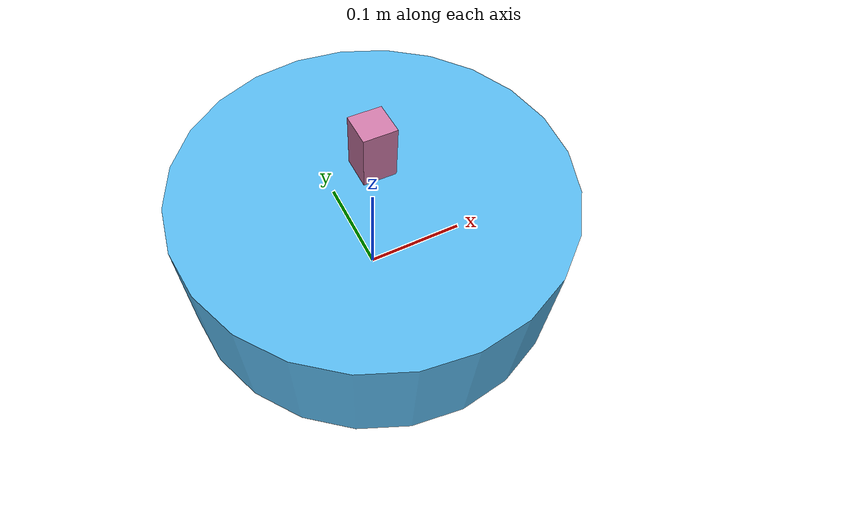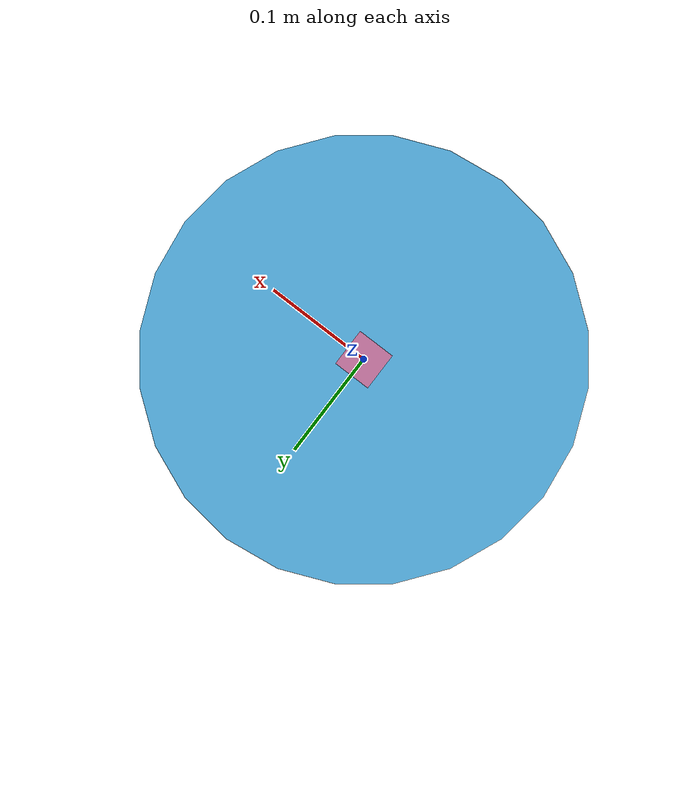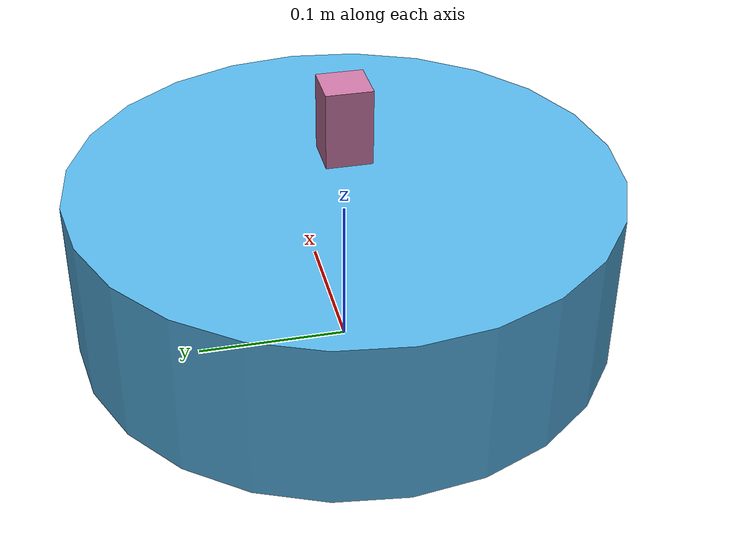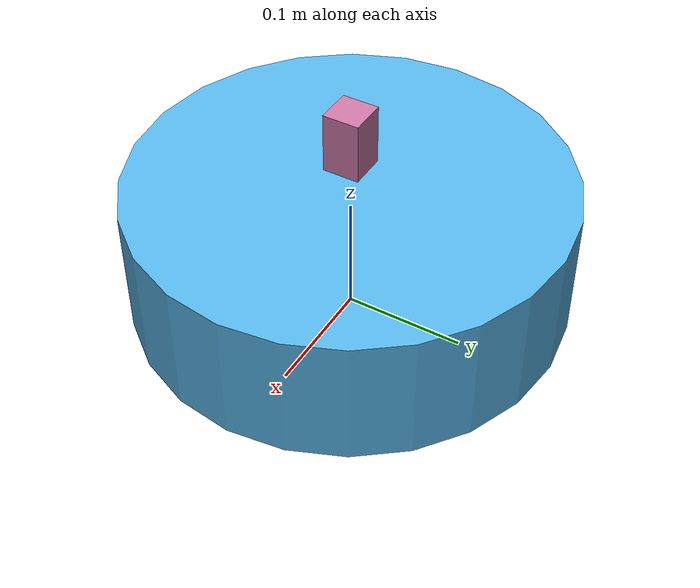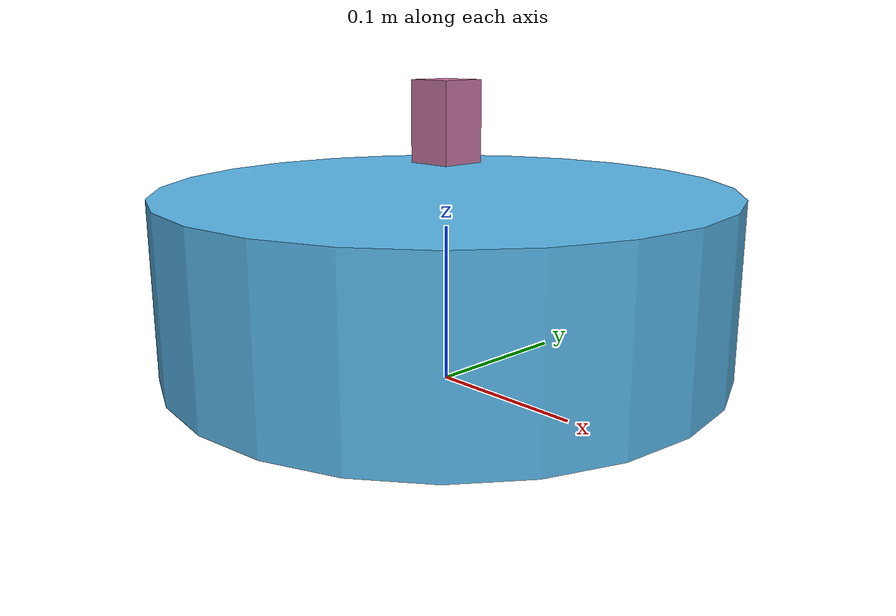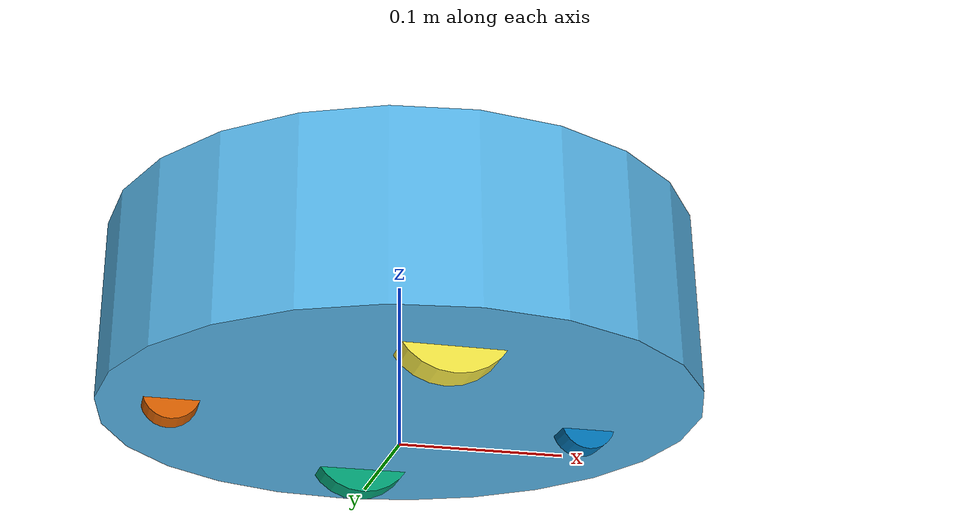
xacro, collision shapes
<?xml version="1.0"?>
<robot name="wangbx_robot_standalone"
       xmlns:sensor="http://playerstage.sourceforge.net/gazebo/xmlschema/#sensor"
       xmlns:controller="http://playerstage.sourceforge.net/gazebo/xmlschema/#controller"
       xmlns:interface="http://playerstage.sourceforge.net/gazebo/xmlschema/#interface"
       xmlns:xacro="http://ros.org/wiki/xacro">

  <xacro:include filename="$(find wangbx_robot_description)/urdf/wangbx_robot.urdf.xacro" />

  <wangbx_robot/>

</robot>

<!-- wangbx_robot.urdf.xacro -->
<robot name="wangbx_robot" xmlns:xacro="http://ros.org/wiki/xacro">
  <xacro:include filename="$(find wangbx_robot_description)/urdf/common_properties.urdf.xacro"/>
  <xacro:include filename="$(find wangbx_robot_description)/urdf/wangbx_robot_gazebo.urdf.xacro"/>

  <xacro:macro name="wangbx_robot">
    <link name="base_footprint"/>

    <joint name="base_joint" type="fixed">
      <origin xyz="0 0 0.0102" rpy="0 0 0" />
      <parent link="base_footprint"/>
      <child link="base_link" />
    </joint>
    <link name="base_link">
      <visual>
        <geometry>
        <cylinder length="0.10" radius="0.1"/>
          <!--mesh filename="package://wangbx_robot_description/meshes/main_body.dae" /-->
        </geometry>
        <origin xyz="0.001 0 0.05199" rpy="0 0 0"/>
      </visual>
      <collision name="base">
        <geometry>
          <cylinder length="0.10938" radius="0.178"/>
        </geometry>
        <origin xyz="0.0 0 0.05949" rpy="0 0 0"/>
      </collision>
      <inertial>
        <origin xyz="0.01 0 0"/>
        <mass value="0.4"/>
        <inertia ixx="0.019995" ixy="0.0" ixz="0.0"
                 iyy="0.019995" iyz="0.0"
                 izz="0.03675" />
      </inertial>
    </link>

    <joint name="wheel_left_joint" type="continuous">
      <parent link="base_link"/>
      <child link="wheel_left_link"/>
      <origin xyz="0.00 ${0.23/2} 0.0250" rpy="${-M_PI/2} 0 0"/>
      <axis xyz="0 0 1"/>
    </joint>

    <link name="wheel_left_link">
      <visual>
        <geometry>
          <mesh filename="package://wangbx_robot_description/meshes/wheel.dae"/>
        </geometry>
        <origin xyz="0 0 0" rpy="0 0 0"/>
      </visual>
      <collision>
        <geometry>
          <cylinder length="0.0206" radius="0.0352"/>
        </geometry>
        <origin rpy="0 0 0" xyz="0 0 0"/>
      </collision>
      <inertial>
        <mass value="0.01" />
        <origin xyz="0 0 0" />
        <inertia ixx="0.001" ixy="0.0" ixz="0.0"
                 iyy="0.001" iyz="0.0"
                 izz="0.001" />
      </inertial>
    </link>

    <joint name="wheel_right_joint" type="continuous">
      <parent link="base_link"/>
      <child link="wheel_right_link"/>
      <origin xyz="0.00 -${0.23/2} 0.0250" rpy="${-M_PI/2} 0 0"/>
      <axis xyz="0 0 1"/>
    </joint>
    <link name="wheel_right_link">
      <visual>
        <geometry>
          <mesh filename="package://wangbx_robot_description/meshes/wheel.dae"/>
        </geometry>
        <origin xyz="0 0 0" rpy="0 0 0"/>
      </visual>
      <collision>
        <geometry>
          <cylinder length="0.0206" radius="0.0350"/>
        </geometry>
        <origin rpy="0 0 0" xyz="0 0 0"/>
      </collision>
      <inertial>
        <mass value="0.01" />
        <origin xyz="0 0 0" />
        <inertia ixx="0.001" ixy="0.0" ixz="0.0"
                 iyy="0.001" iyz="0.0"
                 izz="0.001" />
      </inertial>
    </link>

    <joint name="caster_front_joint" type="fixed">
      <parent link="base_link"/>
      <child link="caster_front_link"/>
      <origin xyz="0.115 0.0 0.01" rpy="${-M_PI/2} 0 0"/>
    </joint>

    <link name="caster_front_link">
      <collision>
        <geometry>
          <cylinder length="0.0176" radius="0.017"/>
        </geometry>
        <origin rpy="0 0 0" xyz="0 0 0"/>
      </collision>
      <inertial>
        <mass value="0.01" />
        <origin xyz="0 0 0" />
        <inertia ixx="0.001" ixy="0.0" ixz="0.0"
                 iyy="0.001" iyz="0.0"
                 izz="0.001" />
      </inertial>
    </link>

    <joint name="caster_back_joint" type="fixed">
      <parent link="base_link"/>
      <child link="caster_back_link"/>
      <origin xyz="-0.135 0.0 0.01" rpy="${-M_PI/2} 0 0"/>
    </joint>

    <link name="caster_back_link">
      <collision>
        <geometry>
          <cylinder length="0.0176" radius="0.017"/>
        </geometry>
        <origin rpy="0 0 0" xyz="0 0 0"/>
      </collision>
      <inertial>
        <mass value="0.01" />
        <origin xyz="0 0 0" />
        <inertia ixx="0.001" ixy="0.0" ixz="0.0"
                 iyy="0.001" iyz="0.0"
                 izz="0.001" />
      </inertial>
    </link>

    <link name="laser_link">
      <visual>
        <geometry>
          <box size="0.03 0.03 0.05" />
        </geometry>
        <origin xyz="0 0 0" rpy="0 0 0"/>
      </visual>
      <collision>
        <geometry>
          <box size="0.03 0.03 0.05" />
        </geometry>
        <origin rpy="0 0 0" xyz="0 0 0"/>
      </collision>
      <inertial>
        <mass value="0.01" />
        <origin xyz="0 0 0" />
        <inertia ixx="0.001" ixy="0.0" ixz="0.0"
                 iyy="0.001" iyz="0.0"
                 izz="0.001" />
      </inertial>
    </link>

    <joint name="laser_joint" type="fixed">
      <parent link="base_link"/>
      <child link="laser_link"/>
      <origin xyz="0 0 0.155" rpy="0 0 0"/>
    </joint>

    <wangbx_robot_sim/>

</xacro:macro>
</robot>

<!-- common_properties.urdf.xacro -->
<robot name="xacro_properties" xmlns:xacro="http://ros.org/wiki/xacro">
  <xacro:property name="M_PI" value="3.1415926535897931" />
  <xacro:property name="material_white">
    <material name="white">
      <color rgba="1 1 1 1"/>
    </material>
  </xacro:property>
  <xacro:property name="material_grey">
    <material name="grey">
      <color rgba="0.5 0.5 0.5 1"/>
    </material>
  </xacro:property>
  <xacro:property name="material_light_grey">
    <material name="light_grey">
      <color rgba="0.6 0.6 0.6 1"/>
    </material>
  </xacro:property>
  <xacro:property name="material_dark_grey">
    <material name="dark_grey">
      <color rgba="0.3 0.3 0.3 1"/>
    </material>
  </xacro:property>
  <xacro:property name="material_black">
    <material name="black">
      <color rgba="0.1 0.1 0.1 1"/>
    </material>
  </xacro:property>
  <xacro:property name="material_red">
    <material name="red">
      <color rgba="1 0 0 1"/>
    </material>
  </xacro:property>
  <xacro:property name="material_green">
    <material name="green">
      <color rgba="0.0 0.8 0.0 1"/>
    </material>
  </xacro:property>
  <xacro:property name="material_blue">
    <material name="blue">
      <color rgba="0.0 0.0 1.0 1"/>
    </material>
  </xacro:property>
  <xacro:property name="material_grey_blue">
    <material name="grey_blue">
      <color rgba="0.4 0.4 1.0 1"/>
    </material>
  </xacro:property>
  <xacro:property name="material_orange">
    <material name="orange">
      <color rgba="1.0 0.7 0.0 1"/>
    </material>
  </xacro:property>
</robot>
